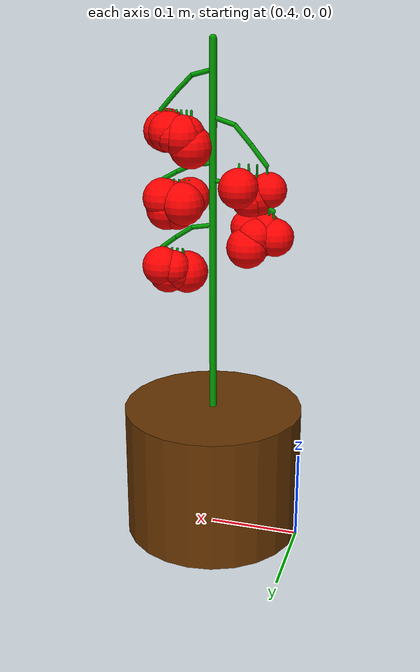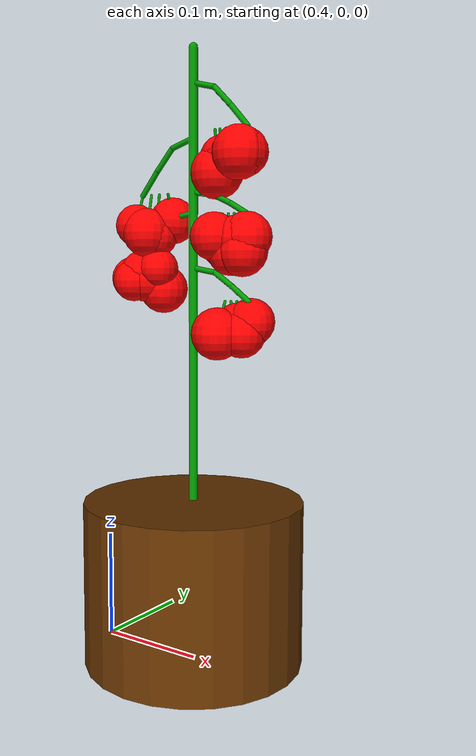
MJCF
<mujoco model="tomato_plant">
  <worldbody>
    <geom name="pot" type="cylinder" pos="0.500 0.000 0.075" size="0.100 0.075" rgba="0.4 0.2 0 1" contype="0" conaffinity="0"/>
    <body name="tomato_plant" pos="0.500 0.000 0.150">
    <geom type="capsule" fromto="0.000 0.000 0.000 0.000 0.000 0.400" size="0.0040" rgba="0 0.6 0 1"/>
    <body name="side_stem1" pos="0.000 0.000 0.210">
    <geom type="capsule" fromto="0.000 0.000 0.000 0.023 0.000 -0.004" size="0.0025" rgba="0 0.6 0 1"/>
    <geom type="capsule" fromto="0.023 0.000 -0.004 0.041 0.000 -0.016" size="0.0025" rgba="0 0.6 0 1"/>
    <geom type="capsule" fromto="0.041 0.000 -0.016 0.058 0.000 -0.029" size="0.0025" rgba="0 0.6 0 1"/>
    <!-- side_stem1 tip=(0.058,0.000,-0.029) -->
    <body name="truss1" pos="0.058 0.000 -0.029">
    <!-- truss: 5 tomatoes, span=0.024 m from tip -->
    <geom type="capsule" fromto="-0.000 0.000 0.000 -0.003 0.009 -0.015" size="0.0012" rgba="0 0.6 0 1"/>
    <geom type="sphere" pos="-0.003 0.009 -0.018" size="0.021" rgba="1 0 0 1"/>
    <geom type="capsule" fromto="-0.006 0.000 0.000 -0.008 0.002 -0.024" size="0.0012" rgba="0 0.6 0 1"/>
    <geom type="sphere" pos="-0.008 0.002 -0.028" size="0.021" rgba="1 0 0 1"/>
    <geom type="capsule" fromto="-0.012 0.000 0.000 -0.015 0.006 -0.017" size="0.0012" rgba="0 0.6 0 1"/>
    <geom type="sphere" pos="-0.015 0.006 -0.020" size="0.019" rgba="1 0 0 1"/>
    <geom type="capsule" fromto="-0.018 0.000 0.000 -0.016 0.003 -0.022" size="0.0012" rgba="0 0.6 0 1"/>
    <geom type="sphere" pos="-0.016 0.003 -0.025" size="0.019" rgba="1 0 0 1"/>
    <geom type="capsule" fromto="-0.024 0.000 0.000 -0.026 -0.009 -0.025" size="0.0012" rgba="0 0.6 0 1"/>
    <geom type="sphere" pos="-0.026 -0.009 -0.028" size="0.023" rgba="1 0 0 1"/>
    </body>
    </body>
    <body name="side_stem2" pos="0.000 0.000 0.258">
    <geom type="capsule" fromto="0.000 0.000 0.000 -0.026 0.000 -0.004" size="0.0025" rgba="0 0.6 0 1"/>
    <geom type="capsule" fromto="-0.026 0.000 -0.004 -0.045 0.000 -0.016" size="0.0025" rgba="0 0.6 0 1"/>
    <geom type="capsule" fromto="-0.045 0.000 -0.016 -0.065 0.000 -0.029" size="0.0025" rgba="0 0.6 0 1"/>
    <!-- side_stem2 tip=(-0.065,0.000,-0.029) -->
    <body name="truss2" pos="-0.065 0.000 -0.029">
    <!-- truss: 7 tomatoes, span=0.028 m from tip -->
    <geom type="capsule" fromto="0.000 0.000 0.000 -0.002 -0.002 -0.025" size="0.0012" rgba="0 0.6 0 1"/>
    <geom type="sphere" pos="-0.002 -0.002 -0.028" size="0.020" rgba="1 0 0 1"/>
    <geom type="capsule" fromto="0.005 0.000 0.000 0.005 -0.010 -0.028" size="0.0012" rgba="0 0.6 0 1"/>
    <geom type="sphere" pos="0.005 -0.010 -0.030" size="0.019" rgba="1 0 0 1"/>
    <geom type="capsule" fromto="0.009 0.000 0.000 0.010 -0.005 -0.019" size="0.0012" rgba="0 0.6 0 1"/>
    <geom type="sphere" pos="0.010 -0.005 -0.022" size="0.019" rgba="1 0 0 1"/>
    <geom type="capsule" fromto="0.014 0.000 0.000 0.014 -0.001 -0.026" size="0.0012" rgba="0 0.6 0 1"/>
    <geom type="sphere" pos="0.014 -0.001 -0.029" size="0.021" rgba="1 0 0 1"/>
    <geom type="capsule" fromto="0.019 0.000 0.000 0.018 0.005 -0.022" size="0.0012" rgba="0 0.6 0 1"/>
    <geom type="sphere" pos="0.018 0.005 -0.026" size="0.019" rgba="1 0 0 1"/>
    <geom type="capsule" fromto="0.024 0.000 0.000 0.025 0.009 -0.035" size="0.0012" rgba="0 0.6 0 1"/>
    <geom type="sphere" pos="0.025 0.009 -0.038" size="0.022" rgba="1 0 0 1"/>
    <geom type="capsule" fromto="0.028 0.000 0.000 0.028 -0.003 -0.016" size="0.0012" rgba="0 0.6 0 1"/>
    <geom type="sphere" pos="0.028 -0.003 -0.019" size="0.018" rgba="1 0 0 1"/>
    </body>
    </body>
    <body name="side_stem3" pos="0.000 0.000 0.276">
    <geom type="capsule" fromto="0.000 0.000 0.000 0.022 0.000 -0.003" size="0.0025" rgba="0 0.6 0 1"/>
    <geom type="capsule" fromto="0.022 0.000 -0.003 0.039 0.000 -0.011" size="0.0025" rgba="0 0.6 0 1"/>
    <geom type="capsule" fromto="0.039 0.000 -0.011 0.055 0.000 -0.020" size="0.0025" rgba="0 0.6 0 1"/>
    <!-- side_stem3 tip=(0.055,0.000,-0.020) -->
    <body name="truss3" pos="0.055 0.000 -0.020">
    <!-- truss: 6 tomatoes, span=0.029 m from tip -->
    <geom type="capsule" fromto="-0.000 0.000 0.000 -0.001 0.003 -0.018" size="0.0012" rgba="0 0.6 0 1"/>
    <geom type="sphere" pos="-0.001 0.003 -0.020" size="0.022" rgba="1 0 0 1"/>
    <geom type="capsule" fromto="-0.006 0.000 0.000 -0.004 0.001 -0.029" size="0.0012" rgba="0 0.6 0 1"/>
    <geom type="sphere" pos="-0.004 0.001 -0.032" size="0.022" rgba="1 0 0 1"/>
    <geom type="capsule" fromto="-0.012 0.000 0.000 -0.009 -0.000 -0.018" size="0.0012" rgba="0 0.6 0 1"/>
    <geom type="sphere" pos="-0.009 -0.000 -0.021" size="0.020" rgba="1 0 0 1"/>
    <geom type="capsule" fromto="-0.018 0.000 0.000 -0.016 0.001 -0.029" size="0.0012" rgba="0 0.6 0 1"/>
    <geom type="sphere" pos="-0.016 0.001 -0.033" size="0.020" rgba="1 0 0 1"/>
    <geom type="capsule" fromto="-0.024 0.000 0.000 -0.024 0.006 -0.021" size="0.0012" rgba="0 0.6 0 1"/>
    <geom type="sphere" pos="-0.024 0.006 -0.024" size="0.023" rgba="1 0 0 1"/>
    <geom type="capsule" fromto="-0.029 0.000 0.000 -0.028 -0.007 -0.016" size="0.0012" rgba="0 0.6 0 1"/>
    <geom type="sphere" pos="-0.028 -0.007 -0.019" size="0.021" rgba="1 0 0 1"/>
    </body>
    </body>
    <body name="side_stem4" pos="0.000 0.000 0.323">
    <geom type="capsule" fromto="0.000 0.000 0.000 -0.023 0.000 -0.007" size="0.0025" rgba="0 0.6 0 1"/>
    <geom type="capsule" fromto="-0.023 0.000 -0.007 -0.040 0.000 -0.026" size="0.0025" rgba="0 0.6 0 1"/>
    <geom type="capsule" fromto="-0.040 0.000 -0.026 -0.057 0.000 -0.047" size="0.0025" rgba="0 0.6 0 1"/>
    <!-- side_stem4 tip=(-0.057,0.000,-0.047) -->
    <body name="truss4" pos="-0.057 0.000 -0.047">
    <!-- truss: 4 tomatoes, span=0.029 m from tip -->
    <geom type="capsule" fromto="0.000 0.000 0.000 -0.001 -0.008 -0.025" size="0.0012" rgba="0 0.6 0 1"/>
    <geom type="sphere" pos="-0.001 -0.008 -0.027" size="0.019" rgba="1 0 0 1"/>
    <geom type="capsule" fromto="0.010 0.000 0.000 0.012 -0.009 -0.031" size="0.0012" rgba="0 0.6 0 1"/>
    <geom type="sphere" pos="0.012 -0.009 -0.034" size="0.022" rgba="1 0 0 1"/>
    <geom type="capsule" fromto="0.019 0.000 0.000 0.018 -0.003 -0.034" size="0.0012" rgba="0 0.6 0 1"/>
    <geom type="sphere" pos="0.018 -0.003 -0.037" size="0.019" rgba="1 0 0 1"/>
    <geom type="capsule" fromto="0.029 0.000 0.000 0.027 0.010 -0.021" size="0.0012" rgba="0 0.6 0 1"/>
    <geom type="sphere" pos="0.027 0.010 -0.023" size="0.021" rgba="1 0 0 1"/>
    </body>
    </body>
    <body name="side_stem5" pos="0.000 0.000 0.370">
    <geom type="capsule" fromto="0.000 0.000 0.000 0.022 0.000 -0.006" size="0.0025" rgba="0 0.6 0 1"/>
    <geom type="capsule" fromto="0.022 0.000 -0.006 0.039 0.000 -0.023" size="0.0025" rgba="0 0.6 0 1"/>
    <geom type="capsule" fromto="0.039 0.000 -0.023 0.056 0.000 -0.042" size="0.0025" rgba="0 0.6 0 1"/>
    <!-- side_stem5 tip=(0.056,0.000,-0.042) -->
    <body name="truss5" pos="0.056 0.000 -0.042">
    <!-- truss: 7 tomatoes, span=0.033 m from tip -->
    <geom type="capsule" fromto="-0.000 0.000 0.000 -0.001 -0.004 -0.018" size="0.0012" rgba="0 0.6 0 1"/>
    <geom type="sphere" pos="-0.001 -0.004 -0.022" size="0.021" rgba="1 0 0 1"/>
    <geom type="capsule" fromto="-0.006 0.000 0.000 -0.004 -0.007 -0.020" size="0.0012" rgba="0 0.6 0 1"/>
    <geom type="sphere" pos="-0.004 -0.007 -0.022" size="0.023" rgba="1 0 0 1"/>
    <geom type="capsule" fromto="-0.011 0.000 0.000 -0.010 0.006 -0.018" size="0.0012" rgba="0 0.6 0 1"/>
    <geom type="sphere" pos="-0.010 0.006 -0.021" size="0.021" rgba="1 0 0 1"/>
    <geom type="capsule" fromto="-0.017 0.000 0.000 -0.015 0.010 -0.022" size="0.0012" rgba="0 0.6 0 1"/>
    <geom type="sphere" pos="-0.015 0.010 -0.024" size="0.018" rgba="1 0 0 1"/>
    <geom type="capsule" fromto="-0.022 0.000 0.000 -0.025 0.007 -0.022" size="0.0012" rgba="0 0.6 0 1"/>
    <geom type="sphere" pos="-0.025 0.007 -0.025" size="0.022" rgba="1 0 0 1"/>
    <geom type="capsule" fromto="-0.028 0.000 0.000 -0.029 0.005 -0.019" size="0.0012" rgba="0 0.6 0 1"/>
    <geom type="sphere" pos="-0.029 0.005 -0.023" size="0.019" rgba="1 0 0 1"/>
    <geom type="capsule" fromto="-0.033 0.000 0.000 -0.033 0.003 -0.034" size="0.0012" rgba="0 0.6 0 1"/>
    <geom type="sphere" pos="-0.033 0.003 -0.036" size="0.023" rgba="1 0 0 1"/>
    </body>
    </body>
    </body>
      </worldbody>
</mujoco>
